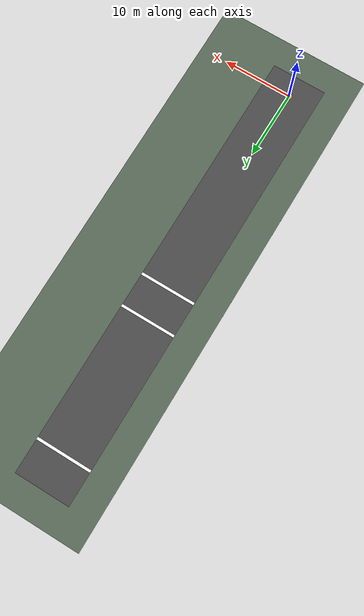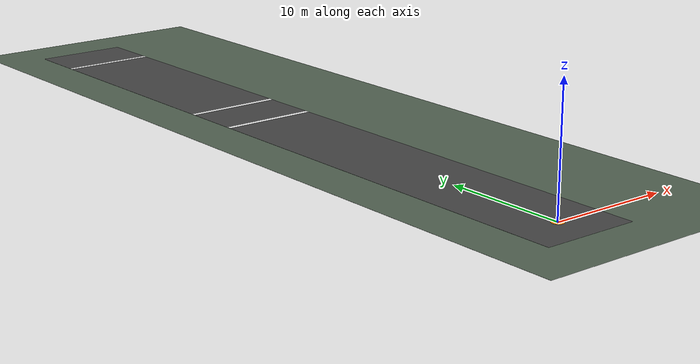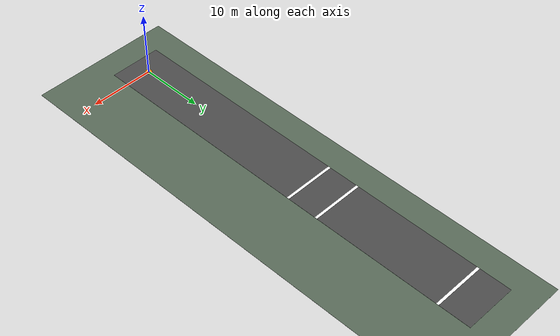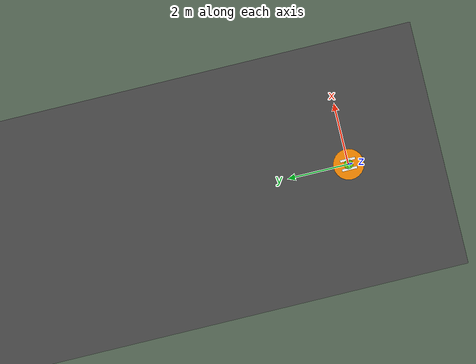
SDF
<?xml version="1.0" ?>
<sdf version="1.11">
  <world name="CUADC_UAV01">

    <!-- ===== Physics & Environment ===== -->
    <physics name="1ms" type="ignored">
      <max_step_size>0.001</max_step_size>
      <real_time_factor>1.0</real_time_factor>
    </physics>
    <gravity>0 0 -9.8</gravity>
    <magnetic_field>6e-06 2.3e-05 -4.2e-05</magnetic_field>
    <atmosphere type="adiabatic"/>

    <spherical_coordinates>
      <surface_model>EARTH_WGS84</surface_model>
      <world_frame_orientation>ENU</world_frame_orientation>
      <latitude_deg>47.397971057728974</latitude_deg>
      <longitude_deg>8.546163739800146</longitude_deg>
      <elevation>0</elevation>
    </spherical_coordinates>

    <!-- World-level system plugins (same as PX4 default) -->
    <plugin filename="gz-sim-physics-system"       name="gz::sim::systems::Physics"/>
    <plugin filename="gz-sim-user-commands-system"  name="gz::sim::systems::UserCommands"/>
    <plugin filename="gz-sim-sensors-system"        name="gz::sim::systems::Sensors">
      <render_engine>ogre2</render_engine>
    </plugin>
    <plugin filename="gz-sim-scene-broadcaster-system" name="gz::sim::systems::SceneBroadcaster"/>
    <plugin filename="gz-sim-contact-system"        name="gz::sim::systems::Contact"/>
    <plugin filename="gz-sim-imu-system"            name="gz::sim::systems::Imu"/>
    <plugin filename="gz-sim-magnetometer-system"   name="gz::sim::systems::Magnetometer"/>
    <plugin filename="gz-sim-navsat-system"         name="gz::sim::systems::NavSat"/>
    <plugin filename="gz-sim-air-pressure-system"   name="gz::sim::systems::AirPressure"/>
    <plugin filename="gz-sim-air-speed-system"      name="gz::sim::systems::AirSpeed"/>
    <plugin filename="gz-sim-apply-link-wrench-system" name="gz::sim::systems::ApplyLinkWrench"/>
    <plugin filename="gz-sim-wind-system"           name="gz::sim::systems::Wind"/>

    <!-- ===== Scene ===== -->
    <scene>
      <ambient>0.5 0.5 0.5 1.0</ambient>
      <background>0.5 0.6 0.8 1.0</background>
      <shadows>true</shadows>
      <grid>false</grid>
    </scene>

    <!-- ===== Sunlight ===== -->
    <light type="directional" name="sun">
      <cast_shadows>true</cast_shadows>
      <pose>0 0 100 0 0 0</pose>
      <diffuse>1.0 1.0 0.95 1</diffuse>
      <specular>0.3 0.3 0.3 1</specular>
      <attenuation>
        <range>1000</range>
        <constant>0.9</constant>
        <linear>0.01</linear>
        <quadratic>0.001</quadratic>
      </attenuation>
      <direction>0.2 -0.3 -0.9</direction>
    </light>

    <!-- ===== GUI ===== -->
    <gui fullscreen="0">
      <plugin filename="MinimalScene" name="3D View">
        <gz-gui>
          <title>3D View</title>
          <property type="bool" key="showTitleBar">false</property>
          <property type="string" key="state">docked</property>
        </gz-gui>
        <engine>ogre2</engine>
        <scene>scene</scene>
        <ambient_light>0.4 0.4 0.4</ambient_light>
        <background_color>0.8 0.8 0.8</background_color>
        <camera_pose>-20 -10 40 0 0.6 0.5</camera_pose>
      </plugin>
      <plugin filename="GzSceneManager" name="Scene Manager">
        <gz-gui>
          <property key="resizable" type="bool">false</property>
          <property key="width" type="double">5</property>
          <property key="height" type="double">5</property>
          <property key="state" type="string">floating</property>
          <property key="showTitleBar" type="bool">false</property>
        </gz-gui>
      </plugin>
      <plugin filename="InteractiveViewControl" name="Interactive view control">
        <gz-gui>
          <property key="resizable" type="bool">false</property>
          <property key="width" type="double">5</property>
          <property key="height" type="double">5</property>
          <property key="state" type="string">floating</property>
          <property key="showTitleBar" type="bool">false</property>
        </gz-gui>
      </plugin>
      <plugin filename="CameraTracking" name="Camera Tracking">
        <gz-gui>
          <property key="resizable" type="bool">false</property>
          <property key="width" type="double">5</property>
          <property key="height" type="double">5</property>
          <property key="state" type="string">floating</property>
          <property key="showTitleBar" type="bool">false</property>
        </gz-gui>
      </plugin>
      <plugin filename="TransformControl" name="Transform control">
        <gz-gui>
          <title>Transform control</title>
          <anchors target="3D View">
            <line own="left" target="left"/>
            <line own="top" target="top"/>
          </anchors>
          <property key="resizable" type="bool">false</property>
          <property key="width" type="double">230</property>
          <property key="height" type="double">50</property>
          <property key="state" type="string">floating</property>
          <property key="showTitleBar" type="bool">false</property>
          <property key="cardBackground" type="string">#666666</property>
        </gz-gui>
      </plugin>
      <plugin filename="WorldControl" name="World control">
        <gz-gui>
          <title>World control</title>
          <property type="bool" key="showTitleBar">false</property>
          <property type="bool" key="resizable">false</property>
          <property type="double" key="height">72</property>
          <property type="double" key="z">1</property>
          <property type="string" key="state">floating</property>
          <anchors target="3D View">
            <line own="left" target="left"/>
            <line own="bottom" target="bottom"/>
          </anchors>
        </gz-gui>
        <play_pause>true</play_pause>
        <step>true</step>
        <start_paused>true</start_paused>
        <use_event>true</use_event>
      </plugin>
      <plugin filename="WorldStats" name="World stats">
        <gz-gui>
          <title>World stats</title>
          <property type="bool" key="showTitleBar">false</property>
          <property type="bool" key="resizable">false</property>
          <property type="double" key="height">110</property>
          <property type="double" key="width">290</property>
          <property type="double" key="z">1</property>
          <property type="string" key="state">floating</property>
          <anchors target="3D View">
            <line own="right" target="right"/>
            <line own="bottom" target="bottom"/>
          </anchors>
        </gz-gui>
        <sim_time>true</sim_time>
        <real_time>true</real_time>
        <real_time_factor>true</real_time_factor>
        <iterations>true</iterations>
      </plugin>
      <plugin filename="ComponentInspector" name="Component inspector">
        <gz-gui>
          <property type="string" key="state">docked_collapsed</property>
        </gz-gui>
      </plugin>
      <plugin filename="EntityTree" name="Entity tree">
        <gz-gui>
          <property type="string" key="state">docked_collapsed</property>
        </gz-gui>
      </plugin>
      <plugin filename="KeyPublisher" name="Key publisher">
        <gz-gui>
          <anchors target="3D View">
            <line own="right" target="right"/>
            <line own="top" target="top"/>
          </anchors>
          <property key="resizable" type="bool">false</property>
          <property key="width" type="double">5</property>
          <property key="height" type="double">5</property>
          <property key="state" type="string">floating</property>
          <property key="showTitleBar" type="bool">false</property>
        </gz-gui>
      </plugin>
      <plugin filename="EntityContextMenuPlugin" name="Entity context menu">
        <gz-gui>
          <property key="state" type="string">floating</property>
          <property key="width" type="double">5</property>
          <property key="height" type="double">5</property>
          <property key="showTitleBar" type="bool">false</property>
        </gz-gui>
      </plugin>
    </gui>

    <!--  Ground — 300m × 300m flat plane                                  -->
    <model name="ground">
      <static>true</static>
      <pose>0 0 -0.005 0 0 0</pose>
      <link name="ground_link">
        <collision name="ground_collision">
          <geometry>
            <box>
              <size>300 300 0.01</size>
            </box>
          </geometry>
        </collision>
        <visual name="ground_visual">
          <geometry>
            <box>
              <size>300 300 0.01</size>
            </box>
          </geometry>
          <material>
            <ambient>0.3 0.35 0.3 1</ambient>
            <diffuse>0.35 0.42 0.35 1</diffuse>
            <specular>0.05 0.05 0.05 1</specular>
          </material>
        </visual>
      </link>
    </model>

    <!--  Track — dark gray runway 8m × 65m, y: -3 to 62                   -->
    <!--  Centered at (0, 29.5)                                            -->
    <model name="track">
      <static>true</static>
      <pose>0 29.5 0.005 0 0 0</pose>
      <link name="track_link">
        <collision name="track_collision">
          <geometry>
            <box>
              <size>8 65 0.01</size>
            </box>
          </geometry>
        </collision>
        <visual name="track_visual">
          <geometry>
            <box>
              <size>8 65 0.01</size>
            </box>
          </geometry>
          <material>
            <ambient>0.25 0.25 0.25 1</ambient>
            <diffuse>0.3 0.3 0.3 1</diffuse>
            <specular>0.05 0.05 0.05 1</specular>
          </material>
        </visual>
      </link>
    </model>

    <!--  Takeoff pad — orange circle Ø1m at origin (0, 0)                  -->
    <model name="takeoff_pad">
      <static>true</static>
      <pose>0 0 0.012 0 0 0</pose>
      <link name="pad_link">
        <visual name="pad_visual">
          <geometry>
            <cylinder>
              <length>0.005</length>
              <radius>0.5</radius>
            </cylinder>
          </geometry>
          <material>
            <ambient>1.0 0.5 0.0 1</ambient>
            <diffuse>1.0 0.55 0.0 1</diffuse>
            <specular>0.1 0.1 0.1 1</specular>
          </material>
        </visual>
      </link>
    </model>

    <!--  White "H" marker at origin (on the orange pad)                    -->
    <!--  Built from 3 boxes: two vertical + one horizontal                 -->
    <model name="H_marker">
      <static>true</static>
      <pose>0 0 0.016 0 0 0</pose>
      <link name="H_link">
        <!-- Left vertical bar -->
        <visual name="H_left">
          <pose>-0.15 0 0 0 0 0</pose>
          <geometry>
            <box>
              <size>0.08 0.5 0.005</size>
            </box>
          </geometry>
          <material>
            <ambient>1 1 1 1</ambient>
            <diffuse>1 1 1 1</diffuse>
          </material>
        </visual>
        <!-- Right vertical bar -->
        <visual name="H_right">
          <pose>0.15 0 0 0 0 0</pose>
          <geometry>
            <box>
              <size>0.08 0.5 0.005</size>
            </box>
          </geometry>
          <material>
            <ambient>1 1 1 1</ambient>
            <diffuse>1 1 1 1</diffuse>
          </material>
        </visual>
        <!-- Horizontal crossbar -->
        <visual name="H_cross">
          <pose>0 0 0 0 0 0</pose>
          <geometry>
            <box>
              <size>0.3 0.08 0.005</size>
            </box>
          </geometry>
          <material>
            <ambient>1 1 1 1</ambient>
            <diffuse>1 1 1 1</diffuse>
          </material>
        </visual>
      </link>
    </model>

    <!--  Gate lines — white stripes across the track                      -->
    <!--  Line 1: y = 32  (±0.2 → 31.8 .. 32.2)                            -->
    <!--  Line 2: y = 37  (±0.2 → 36.8 .. 37.2)                            -->
    <!--  Line 3: y = 57  (±0.2 → 56.8 .. 57.2)                            -->

    <model name="gate_line_1">
      <static>true</static>
      <pose>0 32 0.014 0 0 0</pose>
      <link name="line1_link">
        <visual name="line1_visual">
          <geometry>
            <box>
              <size>8 0.4 0.005</size>
            </box>
          </geometry>
          <material>
            <ambient>1 1 1 1</ambient>
            <diffuse>1 1 1 1</diffuse>
          </material>
        </visual>
      </link>
    </model>

    <model name="gate_line_2">
      <static>true</static>
      <pose>0 37 0.014 0 0 0</pose>
      <link name="line2_link">
        <visual name="line2_visual">
          <geometry>
            <box>
              <size>8 0.4 0.005</size>
            </box>
          </geometry>
          <material>
            <ambient>1 1 1 1</ambient>
            <diffuse>1 1 1 1</diffuse>
          </material>
        </visual>
      </link>
    </model>

    <model name="gate_line_3">
      <static>true</static>
      <pose>0 57 0.014 0 0 0</pose>
      <link name="line3_link">
        <visual name="line3_visual">
          <geometry>
            <box>
              <size>8 0.4 0.005</size>
            </box>
          </geometry>
          <material>
            <ambient>1 1 1 1</ambient>
            <diffuse>1 1 1 1</diffuse>
          </material>
        </visual>
      </link>
    </model>

    <!--  Drone spawn marker — green dot at origin                          -->
    <model name="drone_spawn">
      <static>true</static>
      <pose>0 0 0.02 0 0 0</pose>
      <link name="spawn_link">
        <visual name="spawn_visual">
          <geometry>
            <cylinder>
              <length>0.005</length>
              <radius>0.15</radius>
            </cylinder>
          </geometry>
          <material>
            <ambient>0 1 0 0.6</ambient>
            <diffuse>0 1 0 0.6</diffuse>
          </material>
        </visual>
      </link>
    </model>

  </world>
</sdf>
